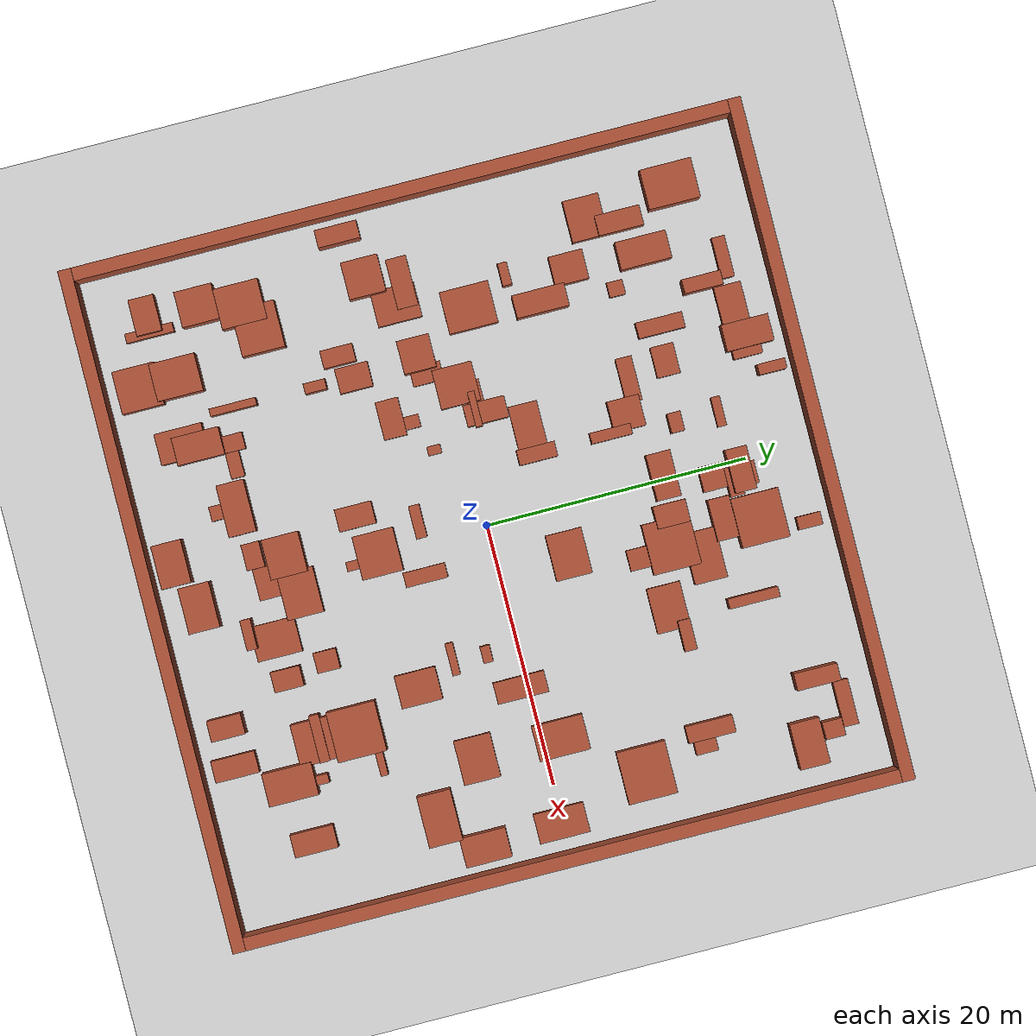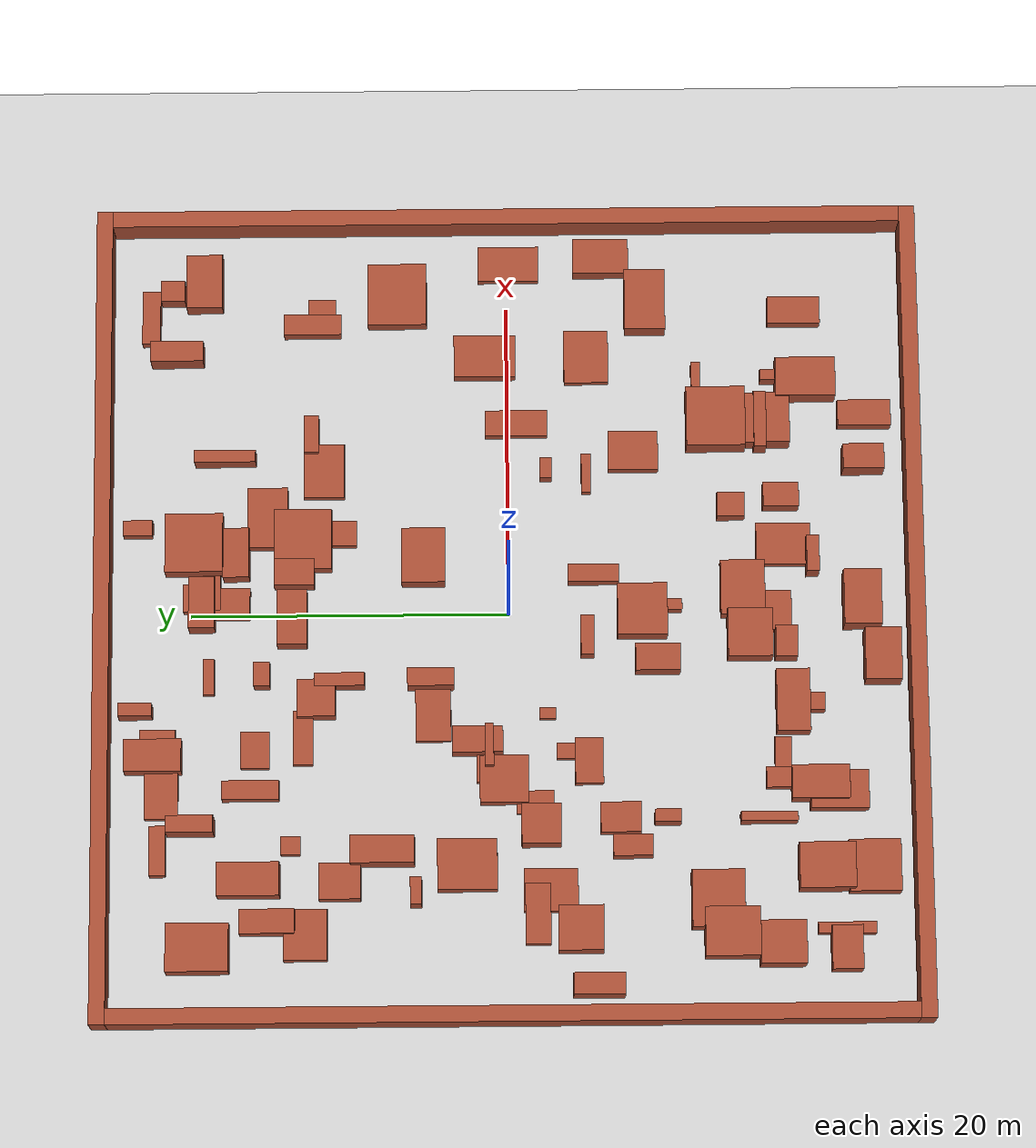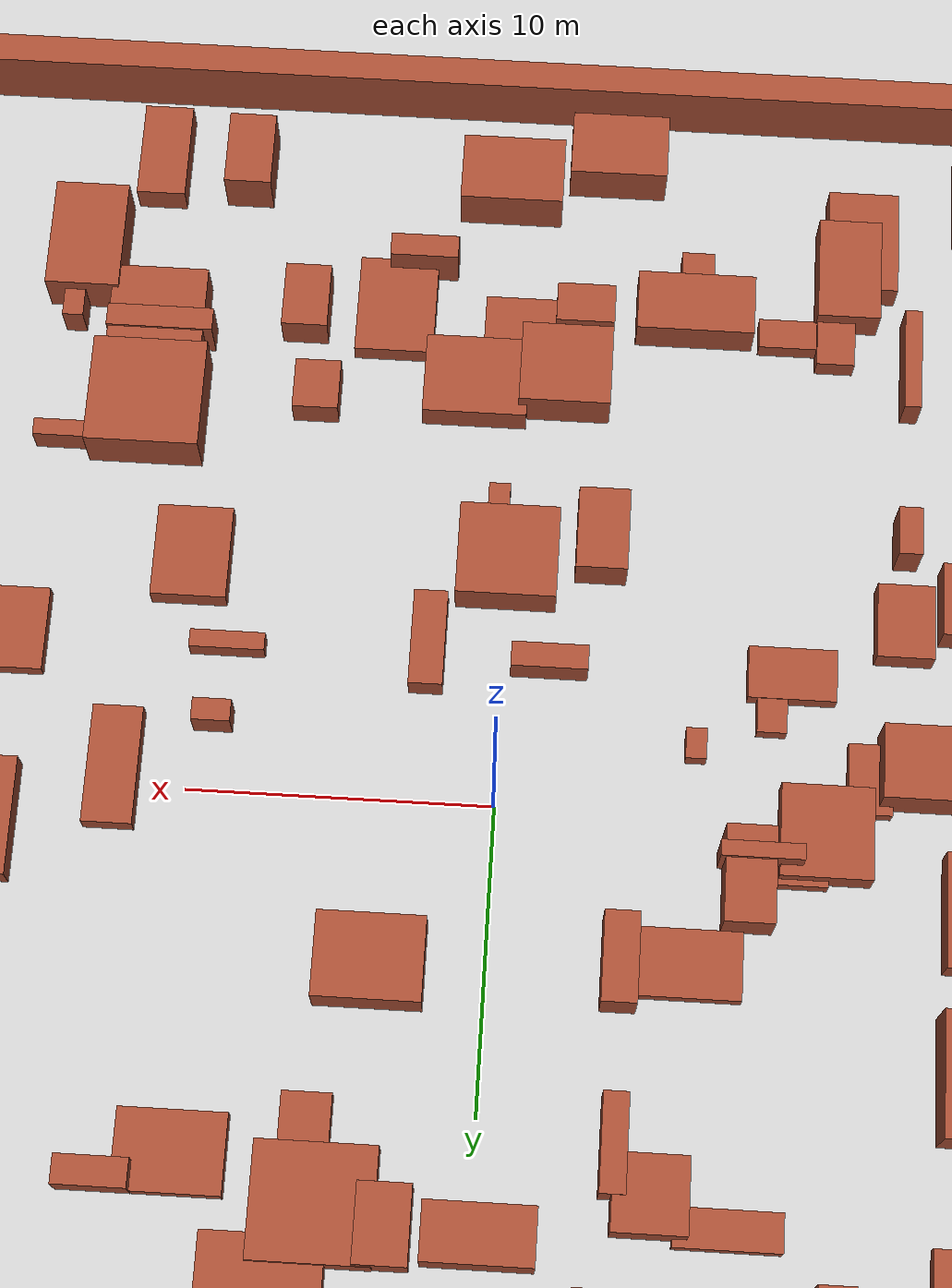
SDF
<?xml version="1.0" ?>
<sdf version="1.6">
  <world name="voronoi_50m_bricks_world">
    <include><uri>model://sun</uri></include>
    <include><uri>model://ground_plane</uri></include>
    <model name="voronoi_maze">
      <pose>0 0 0 0 0 0</pose>
      <static>true</static>
      <link name="obs_0">
        <pose>0.000 25.500 1.250 0 0 0</pose>
        <collision name="col_0"><geometry><box><size>52.000 1.000 2.500</size></box></geometry></collision>
        <visual name="vis_0"><geometry><box><size>52.000 1.000 2.500</size></box></geometry><material><script><name>Gazebo/Bricks</name></script></material></visual>
      </link>
      <link name="obs_1">
        <pose>0.000 -25.500 1.250 0 0 0</pose>
        <collision name="col_1"><geometry><box><size>52.000 1.000 2.500</size></box></geometry></collision>
        <visual name="vis_1"><geometry><box><size>52.000 1.000 2.500</size></box></geometry><material><script><name>Gazebo/Bricks</name></script></material></visual>
      </link>
      <link name="obs_2">
        <pose>-25.500 0.000 1.250 0 0 0</pose>
        <collision name="col_2"><geometry><box><size>1.000 50.000 2.500</size></box></geometry></collision>
        <visual name="vis_2"><geometry><box><size>1.000 50.000 2.500</size></box></geometry><material><script><name>Gazebo/Bricks</name></script></material></visual>
      </link>
      <link name="obs_3">
        <pose>25.500 0.000 1.250 0 0 0</pose>
        <collision name="col_3"><geometry><box><size>1.000 50.000 2.500</size></box></geometry></collision>
        <visual name="vis_3"><geometry><box><size>1.000 50.000 2.500</size></box></geometry><material><script><name>Gazebo/Bricks</name></script></material></visual>
      </link>
      <link name="obs_4">
        <pose>21.664 19.207 0.729 0 0 0</pose>
        <collision name="col_4"><geometry><box><size>3.487 2.276 1.458</size></box></geometry></collision>
        <visual name="vis_4"><geometry><box><size>3.487 2.276 1.458</size></box></geometry><material><script><name>Gazebo/Bricks</name></script></material></visual>
      </link>
      <link name="obs_5">
        <pose>4.790 12.955 0.586 0 0 0</pose>
        <collision name="col_5"><geometry><box><size>3.851 3.642 1.173</size></box></geometry></collision>
        <visual name="vis_5"><geometry><box><size>3.851 3.642 1.173</size></box></geometry><material><script><name>Gazebo/Bricks</name></script></material></visual>
      </link>
      <link name="obs_6">
        <pose>3.475 -19.089 0.911 0 0 0</pose>
        <collision name="col_6"><geometry><box><size>2.305 0.791 1.822</size></box></geometry></collision>
        <visual name="vis_6"><geometry><box><size>2.305 0.791 1.822</size></box></geometry><material><script><name>Gazebo/Bricks</name></script></material></visual>
      </link>
      <link name="obs_7">
        <pose>-16.009 2.736 0.598 0 0 0</pose>
        <collision name="col_7"><geometry><box><size>3.199 3.722 1.195</size></box></geometry></collision>
        <visual name="vis_7"><geometry><box><size>3.199 3.722 1.195</size></box></geometry><material><script><name>Gazebo/Bricks</name></script></material></visual>
      </link>
      <link name="obs_8">
        <pose>-10.636 0.402 0.533 0 0 0</pose>
        <collision name="col_8"><geometry><box><size>2.983 3.034 1.066</size></box></geometry></collision>
        <visual name="vis_8"><geometry><box><size>2.983 3.034 1.066</size></box></geometry><material><script><name>Gazebo/Bricks</name></script></material></visual>
      </link>
      <link name="obs_9">
        <pose>-19.083 -1.629 0.388 0 0 0</pose>
        <collision name="col_9"><geometry><box><size>3.811 1.571 0.775</size></box></geometry></collision>
        <visual name="vis_9"><geometry><box><size>3.811 1.571 0.775</size></box></geometry><material><script><name>Gazebo/Bricks</name></script></material></visual>
      </link>
      <link name="obs_10">
        <pose>-7.952 22.012 0.450 0 0 0</pose>
        <collision name="col_10"><geometry><box><size>1.225 2.205 0.900</size></box></geometry></collision>
        <visual name="vis_10"><geometry><box><size>1.225 2.205 0.900</size></box></geometry><material><script><name>Gazebo/Bricks</name></script></material></visual>
      </link>
      <link name="obs_11">
        <pose>-13.189 -16.047 0.718 0 0 0</pose>
        <collision name="col_11"><geometry><box><size>0.568 3.536 1.436</size></box></geometry></collision>
        <visual name="vis_11"><geometry><box><size>0.568 3.536 1.436</size></box></geometry><material><script><name>Gazebo/Bricks</name></script></material></visual>
      </link>
      <link name="obs_12">
        <pose>5.232 10.788 0.399 0 0 0</pose>
        <collision name="col_12"><geometry><box><size>1.589 2.436 0.797</size></box></geometry></collision>
        <visual name="vis_12"><geometry><box><size>1.589 2.436 0.797</size></box></geometry><material><script><name>Gazebo/Bricks</name></script></material></visual>
      </link>
      <link name="obs_13">
        <pose>-4.285 10.636 0.719 0 0 0</pose>
        <collision name="col_13"><geometry><box><size>0.820 3.120 1.438</size></box></geometry></collision>
        <visual name="vis_13"><geometry><box><size>0.820 3.120 1.438</size></box></geometry><material><script><name>Gazebo/Bricks</name></script></material></visual>
      </link>
      <link name="obs_14">
        <pose>-18.339 -12.779 0.877 0 0 0</pose>
        <collision name="col_14"><geometry><box><size>3.558 3.274 1.753</size></box></geometry></collision>
        <visual name="vis_14"><geometry><box><size>3.558 3.274 1.753</size></box></geometry><material><script><name>Gazebo/Bricks</name></script></material></visual>
      </link>
      <link name="obs_15">
        <pose>-11.200 16.214 0.496 0 0 0</pose>
        <collision name="col_15"><geometry><box><size>1.200 3.556 0.991</size></box></geometry></collision>
        <visual name="vis_15"><geometry><box><size>1.200 3.556 0.991</size></box></geometry><material><script><name>Gazebo/Bricks</name></script></material></visual>
      </link>
      <link name="obs_16">
        <pose>-11.048 21.795 0.327 0 0 0</pose>
        <collision name="col_16"><geometry><box><size>3.764 2.065 0.653</size></box></geometry></collision>
        <visual name="vis_16"><geometry><box><size>3.764 2.065 0.653</size></box></geometry><material><script><name>Gazebo/Bricks</name></script></material></visual>
      </link>
      <link name="obs_17">
        <pose>-1.525 -4.888 0.617 0 0 0</pose>
        <collision name="col_17"><geometry><box><size>2.519 0.824 1.234</size></box></geometry></collision>
        <visual name="vis_17"><geometry><box><size>2.519 0.824 1.234</size></box></geometry><material><script><name>Gazebo/Bricks</name></script></material></visual>
      </link>
      <link name="obs_18">
        <pose>12.227 -15.938 0.866 0 0 0</pose>
        <collision name="col_18"><geometry><box><size>3.577 0.780 1.731</size></box></geometry></collision>
        <visual name="vis_18"><geometry><box><size>3.577 0.780 1.731</size></box></geometry><material><script><name>Gazebo/Bricks</name></script></material></visual>
      </link>
      <link name="obs_19">
        <pose>20.774 6.970 0.601 0 0 0</pose>
        <collision name="col_19"><geometry><box><size>3.996 3.725 1.203</size></box></geometry></collision>
        <visual name="vis_19"><geometry><box><size>3.996 3.725 1.203</size></box></geometry><material><script><name>Gazebo/Bricks</name></script></material></visual>
      </link>
      <link name="obs_20">
        <pose>2.467 -5.322 0.562 0 0 0</pose>
        <collision name="col_20"><geometry><box><size>1.115 3.209 1.124</size></box></geometry></collision>
        <visual name="vis_20"><geometry><box><size>1.115 3.209 1.124</size></box></geometry><material><script><name>Gazebo/Bricks</name></script></material></visual>
      </link>
      <link name="obs_21">
        <pose>-20.101 -4.277 0.843 0 0 0</pose>
        <collision name="col_21"><geometry><box><size>2.816 2.793 1.685</size></box></geometry></collision>
        <visual name="vis_21"><geometry><box><size>2.816 2.793 1.685</size></box></geometry><material><script><name>Gazebo/Bricks</name></script></material></visual>
      </link>
      <link name="obs_22">
        <pose>-3.054 -9.274 0.802 0 0 0</pose>
        <collision name="col_22"><geometry><box><size>1.699 2.797 1.604</size></box></geometry></collision>
        <visual name="vis_22"><geometry><box><size>1.699 2.797 1.604</size></box></geometry><material><script><name>Gazebo/Bricks</name></script></material></visual>
      </link>
      <link name="obs_23">
        <pose>-11.481 -20.465 0.589 0 0 0</pose>
        <collision name="col_23"><geometry><box><size>2.387 3.626 1.178</size></box></geometry></collision>
        <visual name="vis_23"><geometry><box><size>2.387 3.626 1.178</size></box></geometry><material><script><name>Gazebo/Bricks</name></script></material></visual>
      </link>
      <link name="obs_24">
        <pose>1.403 18.664 0.508 0 0 0</pose>
        <collision name="col_24"><geometry><box><size>2.256 1.091 1.016</size></box></geometry></collision>
        <visual name="vis_24"><geometry><box><size>2.256 1.091 1.016</size></box></geometry><material><script><name>Gazebo/Bricks</name></script></material></visual>
      </link>
      <link name="obs_25">
        <pose>15.955 -18.609 0.700 0 0 0</pose>
        <collision name="col_25"><geometry><box><size>0.616 1.435 1.400</size></box></geometry></collision>
        <visual name="vis_25"><geometry><box><size>0.616 1.435 1.400</size></box></geometry><material><script><name>Gazebo/Bricks</name></script></material></visual>
      </link>
      <link name="obs_26">
        <pose>22.893 -0.098 0.309 0 0 0</pose>
        <collision name="col_26"><geometry><box><size>2.271 3.847 0.618</size></box></geometry></collision>
        <visual name="vis_26"><geometry><box><size>2.271 3.847 0.618</size></box></geometry><material><script><name>Gazebo/Bricks</name></script></material></visual>
      </link>
      <link name="obs_27">
        <pose>-19.489 15.158 0.636 0 0 0</pose>
        <collision name="col_27"><geometry><box><size>1.526 3.432 1.272</size></box></geometry></collision>
        <visual name="vis_27"><geometry><box><size>1.526 3.432 1.272</size></box></geometry><material><script><name>Gazebo/Bricks</name></script></material></visual>
      </link>
      <link name="obs_28">
        <pose>-2.994 -23.359 0.909 0 0 0</pose>
        <collision name="col_28"><geometry><box><size>3.303 2.275 1.818</size></box></geometry></collision>
        <visual name="vis_28"><geometry><box><size>3.303 2.275 1.818</size></box></geometry><material><script><name>Gazebo/Bricks</name></script></material></visual>
      </link>
      <link name="obs_29">
        <pose>-6.142 23.430 0.781 0 0 0</pose>
        <collision name="col_29"><geometry><box><size>0.801 2.099 1.561</size></box></geometry></collision>
        <visual name="vis_29"><geometry><box><size>0.801 2.099 1.561</size></box></geometry><material><script><name>Gazebo/Bricks</name></script></material></visual>
      </link>
      <link name="obs_30">
        <pose>0.436 -9.324 0.540 0 0 0</pose>
        <collision name="col_30"><geometry><box><size>0.713 3.044 1.081</size></box></geometry></collision>
        <visual name="vis_30"><geometry><box><size>0.713 3.044 1.081</size></box></geometry><material><script><name>Gazebo/Bricks</name></script></material></visual>
      </link>
      <link name="obs_31">
        <pose>-1.544 -15.072 0.862 0 0 0</pose>
        <collision name="col_31"><geometry><box><size>3.058 2.810 1.724</size></box></geometry></collision>
        <visual name="vis_31"><geometry><box><size>3.058 2.810 1.724</size></box></geometry><material><script><name>Gazebo/Bricks</name></script></material></visual>
      </link>
      <link name="obs_32">
        <pose>7.379 -17.172 0.744 0 0 0</pose>
        <collision name="col_32"><geometry><box><size>1.548 2.243 1.488</size></box></geometry></collision>
        <visual name="vis_32"><geometry><box><size>1.548 2.243 1.488</size></box></geometry><material><script><name>Gazebo/Bricks</name></script></material></visual>
      </link>
      <link name="obs_33">
        <pose>-5.875 -18.629 0.557 0 0 0</pose>
        <collision name="col_33"><geometry><box><size>1.109 2.129 1.114</size></box></geometry></collision>
        <visual name="vis_33"><geometry><box><size>1.109 2.129 1.114</size></box></geometry><material><script><name>Gazebo/Bricks</name></script></material></visual>
      </link>
      <link name="obs_34">
        <pose>-20.119 -20.759 0.376 0 0 0</pose>
        <collision name="col_34"><geometry><box><size>0.709 3.636 0.751</size></box></geometry></collision>
        <visual name="vis_34"><geometry><box><size>0.709 3.636 0.751</size></box></geometry><material><script><name>Gazebo/Bricks</name></script></material></visual>
      </link>
      <link name="obs_35">
        <pose>-8.823 -3.505 0.309 0 0 0</pose>
        <collision name="col_35"><geometry><box><size>0.972 1.225 0.617</size></box></geometry></collision>
        <visual name="vis_35"><geometry><box><size>0.972 1.225 0.617</size></box></geometry><material><script><name>Gazebo/Bricks</name></script></material></visual>
      </link>
      <link name="obs_36">
        <pose>23.178 -6.003 0.640 0 0 0</pose>
        <collision name="col_36"><geometry><box><size>2.250 3.511 1.281</size></box></geometry></collision>
        <visual name="vis_36"><geometry><box><size>2.250 3.511 1.281</size></box></geometry><material><script><name>Gazebo/Bricks</name></script></material></visual>
      </link>
      <link name="obs_37">
        <pose>1.099 19.601 0.391 0 0 0</pose>
        <collision name="col_37"><geometry><box><size>1.731 1.729 0.782</size></box></geometry></collision>
        <visual name="vis_37"><geometry><box><size>1.731 1.729 0.782</size></box></geometry><material><script><name>Gazebo/Bricks</name></script></material></visual>
      </link>
      <link name="obs_38">
        <pose>-6.400 -2.379 0.335 0 0 0</pose>
        <collision name="col_38"><geometry><box><size>0.677 1.024 0.671</size></box></geometry></collision>
        <visual name="vis_38"><geometry><box><size>0.677 1.024 0.671</size></box></geometry><material><script><name>Gazebo/Bricks</name></script></material></visual>
      </link>
      <link name="obs_39">
        <pose>6.239 15.181 0.474 0 0 0</pose>
        <collision name="col_39"><geometry><box><size>3.877 2.509 0.948</size></box></geometry></collision>
        <visual name="vis_39"><geometry><box><size>3.877 2.509 0.948</size></box></geometry><material><script><name>Gazebo/Bricks</name></script></material></visual>
      </link>
      <link name="obs_40">
        <pose>-12.039 -1.525 0.279 0 0 0</pose>
        <collision name="col_40"><geometry><box><size>1.430 2.349 0.557</size></box></geometry></collision>
        <visual name="vis_40"><geometry><box><size>1.430 2.349 0.557</size></box></geometry><material><script><name>Gazebo/Bricks</name></script></material></visual>
      </link>
      <link name="obs_41">
        <pose>-10.637 -17.781 0.419 0 0 0</pose>
        <collision name="col_41"><geometry><box><size>1.282 3.686 0.839</size></box></geometry></collision>
        <visual name="vis_41"><geometry><box><size>1.282 3.686 0.839</size></box></geometry><material><script><name>Gazebo/Bricks</name></script></material></visual>
      </link>
      <link name="obs_42">
        <pose>-16.296 -22.544 0.635 0 0 0</pose>
        <collision name="col_42"><geometry><box><size>3.246 3.219 1.270</size></box></geometry></collision>
        <visual name="vis_42"><geometry><box><size>3.246 3.219 1.270</size></box></geometry><material><script><name>Gazebo/Bricks</name></script></material></visual>
      </link>
      <link name="obs_43">
        <pose>14.565 -11.955 0.555 0 0 0</pose>
        <collision name="col_43"><geometry><box><size>3.168 0.571 1.110</size></box></geometry></collision>
        <visual name="vis_43"><geometry><box><size>3.168 0.571 1.110</size></box></geometry><material><script><name>Gazebo/Bricks</name></script></material></visual>
      </link>
      <link name="obs_44">
        <pose>0.033 -8.347 0.797 0 0 0</pose>
        <collision name="col_44"><geometry><box><size>3.307 3.125 1.593</size></box></geometry></collision>
        <visual name="vis_44"><geometry><box><size>3.307 3.125 1.593</size></box></geometry><material><script><name>Gazebo/Bricks</name></script></material></visual>
      </link>
      <link name="obs_45">
        <pose>-3.912 18.862 0.280 0 0 0</pose>
        <collision name="col_45"><geometry><box><size>2.266 0.688 0.560</size></box></geometry></collision>
        <visual name="vis_45"><geometry><box><size>2.266 0.688 0.560</size></box></geometry><material><script><name>Gazebo/Bricks</name></script></material></visual>
      </link>
      <link name="obs_46">
        <pose>0.006 -16.096 0.477 0 0 0</pose>
        <collision name="col_46"><geometry><box><size>2.547 3.229 0.955</size></box></geometry></collision>
        <visual name="vis_46"><geometry><box><size>2.547 3.229 0.955</size></box></geometry><material><script><name>Gazebo/Bricks</name></script></material></visual>
      </link>
      <link name="obs_47">
        <pose>-2.105 -17.338 0.847 0 0 0</pose>
        <collision name="col_47"><geometry><box><size>1.965 1.371 1.694</size></box></geometry></collision>
        <visual name="vis_47"><geometry><box><size>1.965 1.371 1.694</size></box></geometry><material><script><name>Gazebo/Bricks</name></script></material></visual>
      </link>
      <link name="obs_48">
        <pose>-17.015 10.654 0.610 0 0 0</pose>
        <collision name="col_48"><geometry><box><size>2.247 2.581 1.220</size></box></geometry></collision>
        <visual name="vis_48"><geometry><box><size>2.247 2.581 1.220</size></box></geometry><material><script><name>Gazebo/Bricks</name></script></material></visual>
      </link>
      <link name="obs_49">
        <pose>4.517 19.790 0.806 0 0 0</pose>
        <collision name="col_49"><geometry><box><size>3.753 3.639 1.612</size></box></geometry></collision>
        <visual name="vis_49"><geometry><box><size>3.753 3.639 1.612</size></box></geometry><material><script><name>Gazebo/Bricks</name></script></material></visual>
      </link>
      <link name="obs_50">
        <pose>12.332 -0.527 0.394 0 0 0</pose>
        <collision name="col_50"><geometry><box><size>1.642 3.910 0.789</size></box></geometry></collision>
        <visual name="vis_50"><geometry><box><size>1.642 3.910 0.789</size></box></geometry><material><script><name>Gazebo/Bricks</name></script></material></visual>
      </link>
      <link name="obs_51">
        <pose>12.754 -22.578 0.557 0 0 0</pose>
        <collision name="col_51"><geometry><box><size>1.657 3.351 1.115</size></box></geometry></collision>
        <visual name="vis_51"><geometry><box><size>1.657 3.351 1.115</size></box></geometry><material><script><name>Gazebo/Bricks</name></script></material></visual>
      </link>
      <link name="obs_52">
        <pose>-20.317 12.785 0.490 0 0 0</pose>
        <collision name="col_52"><geometry><box><size>3.156 2.723 0.981</size></box></geometry></collision>
        <visual name="vis_52"><geometry><box><size>3.156 2.723 0.981</size></box></geometry><material><script><name>Gazebo/Bricks</name></script></material></visual>
      </link>
      <link name="obs_53">
        <pose>10.145 17.858 0.768 0 0 0</pose>
        <collision name="col_53"><geometry><box><size>0.765 3.853 1.536</size></box></geometry></collision>
        <visual name="vis_53"><geometry><box><size>0.765 3.853 1.536</size></box></geometry><material><script><name>Gazebo/Bricks</name></script></material></visual>
      </link>
      <link name="obs_54">
        <pose>-14.911 -7.568 0.680 0 0 0</pose>
        <collision name="col_54"><geometry><box><size>1.353 2.465 1.361</size></box></geometry></collision>
        <visual name="vis_54"><geometry><box><size>1.353 2.465 1.361</size></box></geometry><material><script><name>Gazebo/Bricks</name></script></material></visual>
      </link>
      <link name="obs_55">
        <pose>-14.961 22.007 0.399 0 0 0</pose>
        <collision name="col_55"><geometry><box><size>3.132 0.993 0.798</size></box></geometry></collision>
        <visual name="vis_55"><geometry><box><size>3.132 0.993 0.798</size></box></geometry><material><script><name>Gazebo/Bricks</name></script></material></visual>
      </link>
      <link name="obs_56">
        <pose>-5.445 12.108 0.700 0 0 0</pose>
        <collision name="col_56"><geometry><box><size>2.375 2.428 1.401</size></box></geometry></collision>
        <visual name="vis_56"><geometry><box><size>2.375 2.428 1.401</size></box></geometry><material><script><name>Gazebo/Bricks</name></script></material></visual>
      </link>
      <link name="obs_57">
        <pose>0.633 -22.152 0.967 0 0 0</pose>
        <collision name="col_57"><geometry><box><size>3.489 2.360 1.935</size></box></geometry></collision>
        <visual name="vis_57"><geometry><box><size>3.489 2.360 1.935</size></box></geometry><material><script><name>Gazebo/Bricks</name></script></material></visual>
      </link>
      <link name="obs_58">
        <pose>2.610 13.500 0.763 0 0 0</pose>
        <collision name="col_58"><geometry><box><size>1.704 2.499 1.525</size></box></geometry></collision>
        <visual name="vis_58"><geometry><box><size>1.704 2.499 1.525</size></box></geometry><material><script><name>Gazebo/Bricks</name></script></material></visual>
      </link>
      <link name="obs_59">
        <pose>3.612 5.376 0.784 0 0 0</pose>
        <collision name="col_59"><geometry><box><size>3.480 2.730 1.568</size></box></geometry></collision>
        <visual name="vis_59"><geometry><box><size>3.480 2.730 1.568</size></box></geometry><material><script><name>Gazebo/Bricks</name></script></material></visual>
      </link>
      <link name="obs_60">
        <pose>4.328 -17.293 0.402 0 0 0</pose>
        <collision name="col_60"><geometry><box><size>2.669 3.420 0.804</size></box></geometry></collision>
        <visual name="vis_60"><geometry><box><size>2.669 3.420 0.804</size></box></geometry><material><script><name>Gazebo/Bricks</name></script></material></visual>
      </link>
      <link name="obs_61">
        <pose>-13.128 -9.762 0.828 0 0 0</pose>
        <collision name="col_61"><geometry><box><size>0.778 1.636 1.656</size></box></geometry></collision>
        <visual name="vis_61"><geometry><box><size>0.778 1.636 1.656</size></box></geometry><material><script><name>Gazebo/Bricks</name></script></material></visual>
      </link>
      <link name="obs_62">
        <pose>-21.111 -16.744 0.886 0 0 0</pose>
        <collision name="col_62"><geometry><box><size>2.701 2.855 1.773</size></box></geometry></collision>
        <visual name="vis_62"><geometry><box><size>2.701 2.855 1.773</size></box></geometry><material><script><name>Gazebo/Bricks</name></script></material></visual>
      </link>
      <link name="obs_63">
        <pose>-16.815 16.066 0.269 0 0 0</pose>
        <collision name="col_63"><geometry><box><size>1.395 1.393 0.538</size></box></geometry></collision>
        <visual name="vis_63"><geometry><box><size>1.395 1.393 0.538</size></box></geometry><material><script><name>Gazebo/Bricks</name></script></material></visual>
      </link>
      <link name="obs_64">
        <pose>-15.117 8.003 0.943 0 0 0</pose>
        <collision name="col_64"><geometry><box><size>1.735 3.991 1.886</size></box></geometry></collision>
        <visual name="vis_64"><geometry><box><size>1.735 3.991 1.886</size></box></geometry><material><script><name>Gazebo/Bricks</name></script></material></visual>
      </link>
      <link name="obs_65">
        <pose>9.023 -4.923 0.422 0 0 0</pose>
        <collision name="col_65"><geometry><box><size>2.464 0.591 0.844</size></box></geometry></collision>
        <visual name="vis_65"><geometry><box><size>2.464 0.591 0.844</size></box></geometry><material><script><name>Gazebo/Bricks</name></script></material></visual>
      </link>
      <link name="obs_66">
        <pose>-20.416 -13.629 0.893 0 0 0</pose>
        <collision name="col_66"><geometry><box><size>3.070 3.418 1.787</size></box></geometry></collision>
        <visual name="vis_66"><geometry><box><size>3.070 3.418 1.787</size></box></geometry><material><script><name>Gazebo/Bricks</name></script></material></visual>
      </link>
      <link name="obs_67">
        <pose>1.457 -14.674 0.600 0 0 0</pose>
        <collision name="col_67"><geometry><box><size>3.491 2.774 1.199</size></box></geometry></collision>
        <visual name="vis_67"><geometry><box><size>3.491 2.774 1.199</size></box></geometry><material><script><name>Gazebo/Bricks</name></script></material></visual>
      </link>
      <link name="obs_68">
        <pose>-9.454 -4.920 0.326 0 0 0</pose>
        <collision name="col_68"><geometry><box><size>2.897 1.753 0.653</size></box></geometry></collision>
        <visual name="vis_68"><geometry><box><size>2.897 1.753 0.653</size></box></geometry><material><script><name>Gazebo/Bricks</name></script></material></visual>
      </link>
      <link name="obs_69">
        <pose>21.043 21.211 0.696 0 0 0</pose>
        <collision name="col_69"><geometry><box><size>1.323 1.507 1.393</size></box></geometry></collision>
        <visual name="vis_69"><geometry><box><size>1.323 1.507 1.393</size></box></geometry><material><script><name>Gazebo/Bricks</name></script></material></visual>
      </link>
      <link name="obs_70">
        <pose>-8.594 15.950 0.274 0 0 0</pose>
        <collision name="col_70"><geometry><box><size>2.340 1.770 0.548</size></box></geometry></collision>
        <visual name="vis_70"><geometry><box><size>2.340 1.770 0.548</size></box></geometry><material><script><name>Gazebo/Bricks</name></script></material></visual>
      </link>
      <link name="obs_71">
        <pose>-13.581 -1.883 0.853 0 0 0</pose>
        <collision name="col_71"><geometry><box><size>2.522 2.453 1.706</size></box></geometry></collision>
        <visual name="vis_71"><geometry><box><size>2.522 2.453 1.706</size></box></geometry><material><script><name>Gazebo/Bricks</name></script></material></visual>
      </link>
      <link name="obs_72">
        <pose>19.807 11.738 0.468 0 0 0</pose>
        <collision name="col_72"><geometry><box><size>1.365 1.684 0.936</size></box></geometry></collision>
        <visual name="vis_72"><geometry><box><size>1.365 1.684 0.936</size></box></geometry><material><script><name>Gazebo/Bricks</name></script></material></visual>
      </link>
      <link name="obs_73">
        <pose>16.685 1.431 0.517 0 0 0</pose>
        <collision name="col_73"><geometry><box><size>2.689 3.890 1.034</size></box></geometry></collision>
        <visual name="vis_73"><geometry><box><size>2.689 3.890 1.034</size></box></geometry><material><script><name>Gazebo/Bricks</name></script></material></visual>
      </link>
      <link name="obs_74">
        <pose>12.358 -15.935 0.818 0 0 0</pose>
        <collision name="col_74"><geometry><box><size>3.216 3.754 1.636</size></box></geometry></collision>
        <visual name="vis_74"><geometry><box><size>3.216 3.754 1.636</size></box></geometry><material><script><name>Gazebo/Bricks</name></script></material></visual>
      </link>
      <link name="obs_75">
        <pose>6.797 -14.014 0.621 0 0 0</pose>
        <collision name="col_75"><geometry><box><size>1.536 1.732 1.243</size></box></geometry></collision>
        <visual name="vis_75"><geometry><box><size>1.536 1.732 1.243</size></box></geometry><material><script><name>Gazebo/Bricks</name></script></material></visual>
      </link>
      <link name="obs_76">
        <pose>-5.835 -17.689 0.739 0 0 0</pose>
        <collision name="col_76"><geometry><box><size>3.960 2.093 1.479</size></box></geometry></collision>
        <visual name="vis_76"><geometry><box><size>3.960 2.093 1.479</size></box></geometry><material><script><name>Gazebo/Bricks</name></script></material></visual>
      </link>
      <link name="obs_77">
        <pose>-13.461 19.952 0.991 0 0 0</pose>
        <collision name="col_77"><geometry><box><size>1.060 2.956 1.983</size></box></geometry></collision>
        <visual name="vis_77"><geometry><box><size>1.060 2.956 1.983</size></box></geometry><material><script><name>Gazebo/Bricks</name></script></material></visual>
      </link>
      <link name="obs_78">
        <pose>-9.353 -17.026 0.348 0 0 0</pose>
        <collision name="col_78"><geometry><box><size>2.624 1.032 0.695</size></box></geometry></collision>
        <visual name="vis_78"><geometry><box><size>2.624 1.032 0.695</size></box></geometry><material><script><name>Gazebo/Bricks</name></script></material></visual>
      </link>
      <link name="obs_79">
        <pose>-4.230 4.946 0.865 0 0 0</pose>
        <collision name="col_79"><geometry><box><size>1.141 2.904 1.730</size></box></geometry></collision>
        <visual name="vis_79"><geometry><box><size>1.141 2.904 1.730</size></box></geometry><material><script><name>Gazebo/Bricks</name></script></material></visual>
      </link>
      <link name="obs_80">
        <pose>18.830 12.351 0.572 0 0 0</pose>
        <collision name="col_80"><geometry><box><size>1.303 3.621 1.144</size></box></geometry></collision>
        <visual name="vis_80"><geometry><box><size>1.303 3.621 1.144</size></box></geometry><material><script><name>Gazebo/Bricks</name></script></material></visual>
      </link>
      <link name="obs_81">
        <pose>-9.356 1.458 0.286 0 0 0</pose>
        <collision name="col_81"><geometry><box><size>2.756 1.318 0.572</size></box></geometry></collision>
        <visual name="vis_81"><geometry><box><size>2.756 1.318 0.572</size></box></geometry><material><script><name>Gazebo/Bricks</name></script></material></visual>
      </link>
      <link name="obs_82">
        <pose>-13.089 -6.836 0.497 0 0 0</pose>
        <collision name="col_82"><geometry><box><size>1.894 2.513 0.994</size></box></geometry></collision>
        <visual name="vis_82"><geometry><box><size>1.894 2.513 0.994</size></box></geometry><material><script><name>Gazebo/Bricks</name></script></material></visual>
      </link>
      <link name="obs_83">
        <pose>-21.406 -20.699 0.668 0 0 0</pose>
        <collision name="col_83"><geometry><box><size>2.754 1.919 1.337</size></box></geometry></collision>
        <visual name="vis_83"><geometry><box><size>2.754 1.919 1.337</size></box></geometry><material><script><name>Gazebo/Bricks</name></script></material></visual>
      </link>
      <link name="obs_84">
        <pose>-9.026 22.297 0.747 0 0 0</pose>
        <collision name="col_84"><geometry><box><size>2.039 3.578 1.493</size></box></geometry></collision>
        <visual name="vis_84"><geometry><box><size>2.039 3.578 1.493</size></box></geometry><material><script><name>Gazebo/Bricks</name></script></material></visual>
      </link>
      <link name="obs_85">
        <pose>0.730 18.062 0.504 0 0 0</pose>
        <collision name="col_85"><geometry><box><size>1.905 3.581 1.008</size></box></geometry></collision>
        <visual name="vis_85"><geometry><box><size>1.905 3.581 1.008</size></box></geometry><material><script><name>Gazebo/Bricks</name></script></material></visual>
      </link>
      <link name="obs_86">
        <pose>-8.204 2.049 0.810 0 0 0</pose>
        <collision name="col_86"><geometry><box><size>1.631 3.161 1.620</size></box></geometry></collision>
        <visual name="vis_86"><geometry><box><size>1.631 3.161 1.620</size></box></geometry><material><script><name>Gazebo/Bricks</name></script></material></visual>
      </link>
      <link name="obs_87">
        <pose>-21.137 19.453 0.858 0 0 0</pose>
        <collision name="col_87"><geometry><box><size>3.021 3.910 1.716</size></box></geometry></collision>
        <visual name="vis_87"><geometry><box><size>3.021 3.910 1.716</size></box></geometry><material><script><name>Gazebo/Bricks</name></script></material></visual>
      </link>
      <link name="obs_88">
        <pose>-7.879 12.955 0.317 0 0 0</pose>
        <collision name="col_88"><geometry><box><size>3.406 1.234 0.635</size></box></geometry></collision>
        <visual name="vis_88"><geometry><box><size>3.406 1.234 0.635</size></box></geometry><material><script><name>Gazebo/Bricks</name></script></material></visual>
      </link>
      <link name="obs_89">
        <pose>12.405 -13.137 0.981 0 0 0</pose>
        <collision name="col_89"><geometry><box><size>3.811 3.715 1.963</size></box></geometry></collision>
        <visual name="vis_89"><geometry><box><size>3.811 3.715 1.963</size></box></geometry><material><script><name>Gazebo/Bricks</name></script></material></visual>
      </link>
      <link name="obs_90">
        <pose>14.985 -18.864 0.905 0 0 0</pose>
        <collision name="col_90"><geometry><box><size>2.493 3.781 1.809</size></box></geometry></collision>
        <visual name="vis_90"><geometry><box><size>2.493 3.781 1.809</size></box></geometry><material><script><name>Gazebo/Bricks</name></script></material></visual>
      </link>
      <link name="obs_91">
        <pose>20.205 -8.768 0.820 0 0 0</pose>
        <collision name="col_91"><geometry><box><size>3.899 2.566 1.640</size></box></geometry></collision>
        <visual name="vis_91"><geometry><box><size>3.899 2.566 1.640</size></box></geometry><material><script><name>Gazebo/Bricks</name></script></material></visual>
      </link>
      <link name="obs_92">
        <pose>0.670 19.287 0.828 0 0 0</pose>
        <collision name="col_92"><geometry><box><size>3.310 1.631 1.657</size></box></geometry></collision>
        <visual name="vis_92"><geometry><box><size>3.310 1.631 1.657</size></box></geometry><material><script><name>Gazebo/Bricks</name></script></material></visual>
      </link>
      <link name="obs_93">
        <pose>-14.683 13.728 0.302 0 0 0</pose>
        <collision name="col_93"><geometry><box><size>1.138 1.210 0.605</size></box></geometry></collision>
        <visual name="vis_93"><geometry><box><size>1.138 1.210 0.605</size></box></geometry><material><script><name>Gazebo/Bricks</name></script></material></visual>
      </link>
      <link name="obs_94">
        <pose>-0.309 13.625 0.792 0 0 0</pose>
        <collision name="col_94"><geometry><box><size>3.517 1.852 1.585</size></box></geometry></collision>
        <visual name="vis_94"><geometry><box><size>3.517 1.852 1.585</size></box></geometry><material><script><name>Gazebo/Bricks</name></script></material></visual>
      </link>
      <link name="obs_95">
        <pose>-11.017 -19.292 0.690 0 0 0</pose>
        <collision name="col_95"><geometry><box><size>2.111 3.597 1.380</size></box></geometry></collision>
        <visual name="vis_95"><geometry><box><size>2.111 3.597 1.380</size></box></geometry><material><script><name>Gazebo/Bricks</name></script></material></visual>
      </link>
      <link name="obs_96">
        <pose>12.275 -12.645 0.374 0 0 0</pose>
        <collision name="col_96"><geometry><box><size>2.074 1.457 0.748</size></box></geometry></collision>
        <visual name="vis_96"><geometry><box><size>2.074 1.457 0.748</size></box></geometry><material><script><name>Gazebo/Bricks</name></script></material></visual>
      </link>
      <link name="obs_97">
        <pose>9.325 11.615 0.327 0 0 0</pose>
        <collision name="col_97"><geometry><box><size>3.460 2.553 0.654</size></box></geometry></collision>
        <visual name="vis_97"><geometry><box><size>3.460 2.553 0.654</size></box></geometry><material><script><name>Gazebo/Bricks</name></script></material></visual>
      </link>
      <link name="obs_98">
        <pose>15.252 -16.939 0.658 0 0 0</pose>
        <collision name="col_98"><geometry><box><size>0.699 1.826 1.317</size></box></geometry></collision>
        <visual name="vis_98"><geometry><box><size>0.699 1.826 1.317</size></box></geometry><material><script><name>Gazebo/Bricks</name></script></material></visual>
      </link>
      <link name="obs_99">
        <pose>16.697 -5.010 0.313 0 0 0</pose>
        <collision name="col_99"><geometry><box><size>3.394 2.801 0.627</size></box></geometry></collision>
        <visual name="vis_99"><geometry><box><size>3.394 2.801 0.627</size></box></geometry><material><script><name>Gazebo/Bricks</name></script></material></visual>
      </link>
      <link name="obs_100">
        <pose>3.875 17.140 0.759 0 0 0</pose>
        <collision name="col_100"><geometry><box><size>3.169 1.644 1.518</size></box></geometry></collision>
        <visual name="vis_100"><geometry><box><size>3.169 1.644 1.518</size></box></geometry><material><script><name>Gazebo/Bricks</name></script></material></visual>
      </link>
      <link name="obs_101">
        <pose>-6.338 4.811 0.273 0 0 0</pose>
        <collision name="col_101"><geometry><box><size>3.537 2.210 0.546</size></box></geometry></collision>
        <visual name="vis_101"><geometry><box><size>3.537 2.210 0.546</size></box></geometry><material><script><name>Gazebo/Bricks</name></script></material></visual>
      </link>
      <link name="obs_102">
        <pose>10.451 -7.912 0.452 0 0 0</pose>
        <collision name="col_102"><geometry><box><size>2.496 3.134 0.903</size></box></geometry></collision>
        <visual name="vis_102"><geometry><box><size>2.496 3.134 0.903</size></box></geometry><material><script><name>Gazebo/Bricks</name></script></material></visual>
      </link>
      <link name="obs_103">
        <pose>-3.920 15.507 0.701 0 0 0</pose>
        <collision name="col_103"><geometry><box><size>1.492 1.001 1.401</size></box></geometry></collision>
        <visual name="vis_103"><geometry><box><size>1.492 1.001 1.401</size></box></geometry><material><script><name>Gazebo/Bricks</name></script></material></visual>
      </link>
      <link name="obs_104">
        <pose>16.968 20.923 0.931 0 0 0</pose>
        <collision name="col_104"><geometry><box><size>1.306 3.317 1.862</size></box></geometry></collision>
        <visual name="vis_104"><geometry><box><size>1.306 3.317 1.862</size></box></geometry><material><script><name>Gazebo/Bricks</name></script></material></visual>
      </link>
      <link name="obs_105">
        <pose>-17.712 5.929 0.798 0 0 0</pose>
        <collision name="col_105"><geometry><box><size>1.709 0.709 1.595</size></box></geometry></collision>
        <visual name="vis_105"><geometry><box><size>1.709 0.709 1.595</size></box></geometry><material><script><name>Gazebo/Bricks</name></script></material></visual>
      </link>
      <link name="obs_106">
        <pose>11.616 12.428 0.616 0 0 0</pose>
        <collision name="col_106"><geometry><box><size>2.348 0.934 1.232</size></box></geometry></collision>
        <visual name="vis_106"><geometry><box><size>2.348 0.934 1.232</size></box></geometry><material><script><name>Gazebo/Bricks</name></script></material></visual>
      </link>
      <link name="obs_107">
        <pose>-17.599 -2.446 0.359 0 0 0</pose>
        <collision name="col_107"><geometry><box><size>2.668 3.356 0.718</size></box></geometry></collision>
        <visual name="vis_107"><geometry><box><size>2.668 3.356 0.718</size></box></geometry><material><script><name>Gazebo/Bricks</name></script></material></visual>
      </link>
      <link name="obs_108">
        <pose>19.442 22.605 0.441 0 0 0</pose>
        <collision name="col_108"><geometry><box><size>3.450 1.148 0.882</size></box></geometry></collision>
        <visual name="vis_108"><geometry><box><size>3.450 1.148 0.882</size></box></geometry><material><script><name>Gazebo/Bricks</name></script></material></visual>
      </link>
      <link name="obs_109">
        <pose>5.652 23.356 0.469 0 0 0</pose>
        <collision name="col_109"><geometry><box><size>0.968 1.836 0.937</size></box></geometry></collision>
        <visual name="vis_109"><geometry><box><size>0.968 1.836 0.937</size></box></geometry><material><script><name>Gazebo/Bricks</name></script></material></visual>
      </link>
      <link name="obs_110">
        <pose>-23.619 -5.354 0.975 0 0 0</pose>
        <collision name="col_110"><geometry><box><size>1.335 3.195 1.949</size></box></geometry></collision>
        <visual name="vis_110"><geometry><box><size>1.335 3.195 1.949</size></box></geometry><material><script><name>Gazebo/Bricks</name></script></material></visual>
      </link>
      <link name="obs_111">
        <pose>19.564 -18.256 0.553 0 0 0</pose>
        <collision name="col_111"><geometry><box><size>1.749 3.309 1.106</size></box></geometry></collision>
        <visual name="vis_111"><geometry><box><size>1.749 3.309 1.106</size></box></geometry><material><script><name>Gazebo/Bricks</name></script></material></visual>
      </link>
      <link name="obs_112">
        <pose>-16.335 -19.564 0.901 0 0 0</pose>
        <collision name="col_112"><geometry><box><size>2.855 3.493 1.802</size></box></geometry></collision>
        <visual name="vis_112"><geometry><box><size>2.855 3.493 1.802</size></box></geometry><material><script><name>Gazebo/Bricks</name></script></material></visual>
      </link>
      <link name="obs_113">
        <pose>-8.552 1.305 0.893 0 0 0</pose>
        <collision name="col_113"><geometry><box><size>2.662 0.517 1.787</size></box></geometry></collision>
        <visual name="vis_113"><geometry><box><size>2.662 0.517 1.787</size></box></geometry><material><script><name>Gazebo/Bricks</name></script></material></visual>
      </link>
      <link name="obs_114">
        <pose>9.720 -22.419 0.944 0 0 0</pose>
        <collision name="col_114"><geometry><box><size>1.594 2.590 1.888</size></box></geometry></collision>
        <visual name="vis_114"><geometry><box><size>1.594 2.590 1.888</size></box></geometry><material><script><name>Gazebo/Bricks</name></script></material></visual>
      </link>
      <link name="obs_115">
        <pose>-16.875 16.325 0.792 0 0 0</pose>
        <collision name="col_115"><geometry><box><size>2.106 3.877 1.583</size></box></geometry></collision>
        <visual name="vis_115"><geometry><box><size>2.106 3.877 1.583</size></box></geometry><material><script><name>Gazebo/Bricks</name></script></material></visual>
      </link>
      <link name="obs_116">
        <pose>9.274 -2.384 0.647 0 0 0</pose>
        <collision name="col_116"><geometry><box><size>1.265 0.734 1.294</size></box></geometry></collision>
        <visual name="vis_116"><geometry><box><size>1.265 0.734 1.294</size></box></geometry><material><script><name>Gazebo/Bricks</name></script></material></visual>
      </link>
    </model>
  </world>
</sdf>
